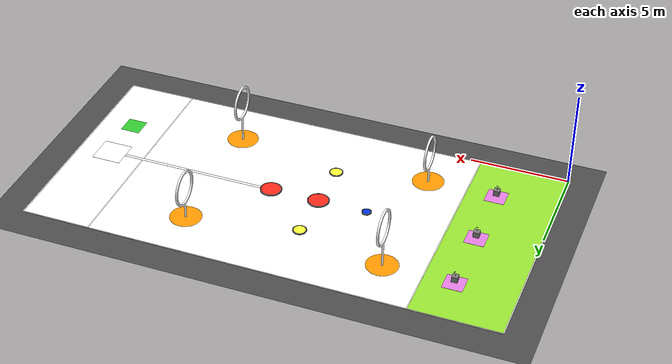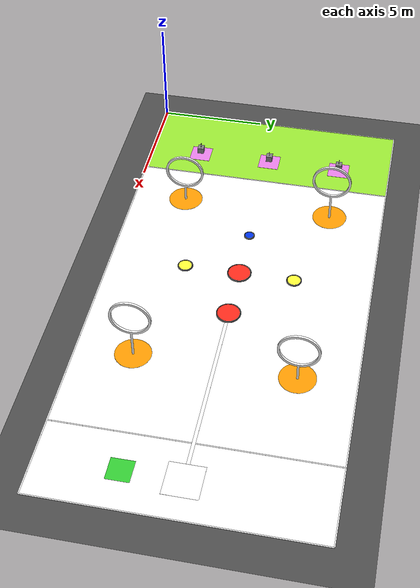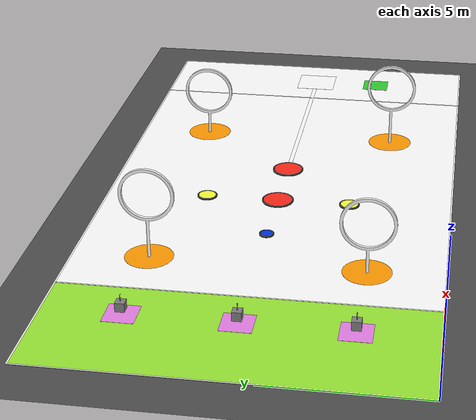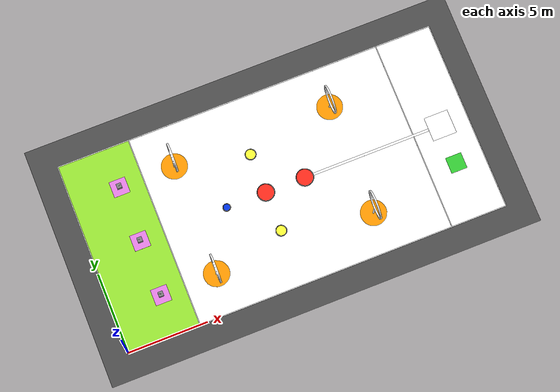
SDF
<?xml version="1.0"?>
<sdf version='1.9'>
  <world name="uav_contest_2026">

    <!-- ===================== 1. PHYSICS & GPS COORDINATE ===================== -->
    <physics name='default_physics' default='0' type='ode'>
      <max_step_size>0.001</max_step_size>
      <real_time_factor>1</real_time_factor>
      <real_time_update_rate>1000</real_time_update_rate>
    </physics>
    <gravity>0 0 -9.8</gravity>
    <magnetic_field>6e-06 2.3e-05 -4.2e-05</magnetic_field>
    <atmosphere type='adiabatic'/>
    <spherical_coordinates>
      <surface_model>EARTH_WGS84</surface_model>
      <world_frame_orientation>ENU</world_frame_orientation>
      <latitude_deg>10.851839568519779</latitude_deg>
      <longitude_deg>106.77210871747029</longitude_deg>
      <elevation>0</elevation>
    </spherical_coordinates>

    <!-- ===================== 2. ENVIRONMENT & LIGHT ===================== -->
    <scene>
      <grid>false</grid>
      <ambient>0.4 0.4 0.4 1</ambient>
      <background>0.7 0.7 0.7 1</background>
      <shadows>true</shadows>
    </scene>
    <!-- Sun light -->
    <light name="sunUTC" type="directional">
      <pose>0 0 500 0 0 0</pose>
      <cast_shadows>true</cast_shadows>
      <intensity>1</intensity>
      <direction>0.001 0.625 -0.78</direction>
      <diffuse>0.904 0.904 0.904 1</diffuse>
      <specular>0.271 0.271 0.271 1</specular>
      <attenuation>
        <range>2000</range>
        <linear>0</linear>
        <constant>1</constant>
        <quadratic>0</quadratic>
      </attenuation>
      <spot>
        <inner_angle>0</inner_angle>
        <outer_angle>0</outer_angle>
        <falloff>0</falloff>
      </spot>
    </light>

    <!-- ===================== 3. WORLD MODELS ===================== -->
    <!-- Main ground plane for physics (invisible, large area) -->
    <model name="ground_plane">
      <static>true</static>
      <link name="link">
        <collision name="collision">
          <geometry>
            <plane>
              <normal>0 0 1</normal>
              <size>100 100</size>
            </plane>
          </geometry>
          <surface>
            <friction>
              <ode>
                <mu>0.6</mu>
                <mu2>0.6</mu2>
              </ode>
            </friction>
            <bounce>
              <restitution_coefficient>0.8</restitution_coefficient>
              <threshold>0.05</threshold>
            </bounce>
            <contact>
              <ode>
                <min_depth>0.001</min_depth>
                <max_vel>10.0</max_vel>
                <kp>5e5</kp>
                <kd>200</kd>
              </ode>
            </contact>
          </surface>
        </collision>
        <visual name="visual">
          <geometry>
            <plane>
              <normal>0 0 1</normal>
              <size>100 100</size>
            </plane>
          </geometry>
          <material>
            <ambient>0.3 0.3 0.3 1</ambient>
            <diffuse>0.3 0.3 0.3 1</diffuse>
            <specular>0.1 0.1 0.1 1</specular>
          </material>
        </visual>
        <pose>0 0 0 0 0 0</pose>
      </link>
      <pose>0 0 0 0 0 0</pose>
    </model>
    <!-- Competition Area: Total 24m x 12m -->
    <!-- Origin at bottom-left corner of green zone -->
    <!-- GREEN ZONE (Vehicle Zone): 4.5m x 12m - Left side -->
    <model name="zone_green">
      <static>true</static>
      <link name="link">
        <visual name="visual">
          <geometry>
            <box>
              <size>4.5 12 0.01</size>
            </box>
          </geometry>
          <material>
            <ambient>0.6 0.9 0.2 1</ambient>
            <diffuse>0.6 0.9 0.2 1</diffuse>
            <specular>0.1 0.1 0.1 1</specular>
          </material>
        </visual>
      </link>
      <pose>2.25 6 0.005 0 0 0</pose>
    </model>
    <!-- GRAY ZONE (Competition Area): 19.5m x 12m - Right side -->
    <model name="zone_gray">
      <static>true</static>
      <link name="link">
        <visual name="visual">
          <geometry>
            <box>
              <size>19.5 12 0.01</size>
            </box>
          </geometry>
          <material>
            <ambient>1 1 1 1</ambient>
            <diffuse>1 1 1 1</diffuse>
            <specular>0.1 0.1 0.1 1</specular>
            <pbr>
              <metal>
                <albedo_map>model://uav_contest_2026/materials/textures/Ground.png</albedo_map>
                <metalness>0.0</metalness>
                <roughness>0.9</roughness>
              </metal>
            </pbr>
          </material>
        </visual>
      </link>
      <pose>14.25 6 0.006 0 0 0</pose>
    </model>
    <!-- HELIPAD in Safe Zone -->
    <model name="helipad">
      <static>true</static>
      <link name="link">
        <visual name="visual">
          <geometry>
            <box>
              <size>1.5 1.5 0.01</size>
            </box>
          </geometry>
          <material>
            <ambient>1 1 1 1</ambient>
            <diffuse>1 1 1 1</diffuse>
            <specular>0.1 0.1 0.1 1</specular>
            <pbr>
              <metal>
                <albedo_map>model://uav_contest_2026/materials/textures/Heliport.png</albedo_map>
                <metalness>0.0</metalness>
                <roughness>0.8</roughness>
              </metal>
            </pbr>
          </material>
        </visual>
      </link>
      <pose>22.25 6 0.008 0 0 1.5708</pose>
    </model>
    <!-- SZ Marker (Green square) -->
    <model name="sz_marker">
      <static>true</static>
      <link name="link">
        <visual name="visual">
          <geometry>
            <box>
              <size>1.0 1.0 0.01</size>
            </box>
          </geometry>
          <material>
            <ambient>0.2 0.8 0.2 1</ambient>
            <diffuse>0.2 0.8 0.2 1</diffuse>
            <specular>0.1 0.1 0.1 1</specular>
          </material>
        </visual>
      </link>
      <pose>22.25 3.5 0.008 0 0 0</pose>
    </model>
    <!-- FIRE POINTS (F1-F5) - Center area -->
    <!-- F1: Red (main, right) -->
    <!-- F1: 1000mm Red Target #FC2A1B, height 6cm -->
    <model name="f1">
      <static>true</static>
      <link name="link">
        <!-- Black perimeter mat (slightly larger) -->
        <visual name="perimeter">
          <geometry>
            <cylinder>
              <radius>0.55</radius>
              <length>0.06</length>
            </cylinder>
          </geometry>
          <material>
            <ambient>0.05 0.05 0.05 1</ambient>
            <diffuse>0.05 0.05 0.05 1</diffuse>
            <specular>0.1 0.1 0.1 1</specular>
          </material>
        </visual>
        <!-- Red impact area (1000mm diameter) -->
        <visual name="target">
          <pose>0 0 0.001 0 0 0</pose>
          <geometry>
            <cylinder>
              <radius>0.5</radius>
              <length>0.06</length>
            </cylinder>
          </geometry>
          <material>
            <!-- #FC2A1B = RGB(252, 42, 27) = (0.988, 0.165, 0.106) -->
            <ambient>0.988 0.165 0.106 1</ambient>
            <diffuse>0.988 0.165 0.106 1</diffuse>
            <specular>0.2 0.2 0.2 1</specular>
          </material>
        </visual>
        <!-- Collision for ball detection -->
        <collision name="target_collision">
          <pose>0 0 0.001 0 0 0</pose>
          <geometry>
            <cylinder>
              <radius>0.5</radius>
              <length>0.06</length>
            </cylinder>
          </geometry>
        </collision>
        <!-- Contact sensor to detect ball hits -->
        <sensor name="sensor_contact" type="contact">
          <always_on>true</always_on>
          <update_rate>1000</update_rate>
          <contact>
            <collision>target_collision</collision>
          </contact>
        </sensor>
      </link>
      <pose>13.5 6 0.03 0 0 0</pose>
    </model>
    <!-- F2: Red (main, left) -->
    <!-- F2: 1000mm Red Target #FC2A1B, height 6cm -->
    <model name="f2">
      <static>true</static>
      <link name="link">
        <!-- Black perimeter mat (slightly larger) -->
        <visual name="perimeter">
          <geometry>
            <cylinder>
              <radius>0.55</radius>
              <length>0.06</length>
            </cylinder>
          </geometry>
          <material>
            <ambient>0.05 0.05 0.05 1</ambient>
            <diffuse>0.05 0.05 0.05 1</diffuse>
            <specular>0.1 0.1 0.1 1</specular>
          </material>
        </visual>
        <!-- Red impact area (1000mm diameter) -->
        <visual name="target">
          <pose>0 0 0.001 0 0 0</pose>
          <geometry>
            <cylinder>
              <radius>0.5</radius>
              <length>0.06</length>
            </cylinder>
          </geometry>
          <material>
            <!-- #FC2A1B = RGB(252, 42, 27) = (0.988, 0.165, 0.106) -->
            <ambient>0.988 0.165 0.106 1</ambient>
            <diffuse>0.988 0.165 0.106 1</diffuse>
            <specular>0.2 0.2 0.2 1</specular>
          </material>
        </visual>
        <!-- Collision for ball detection -->
        <collision name="target_collision">
          <pose>0 0 0.001 0 0 0</pose>
          <geometry>
            <cylinder>
              <radius>0.5</radius>
              <length>0.06</length>
            </cylinder>
          </geometry>
        </collision>
        <!-- Contact sensor to detect ball hits -->
        <sensor name="sensor_contact" type="contact">
          <contact>
            <collision>target_collision</collision>
          </contact>
        </sensor>
      </link>
      <pose>11 6 0.03 0 0 0</pose>
    </model>
    <!-- F3: 600mm Yellow Target #FAFF37, height 6cm -->
    <model name="f3">
      <static>true</static>
      <link name="link">
        <!-- Black perimeter mat -->
        <visual name="perimeter">
          <geometry>
            <cylinder>
              <radius>0.35</radius>
              <length>0.06</length>
            </cylinder>
          </geometry>
          <material>
            <ambient>0.05 0.05 0.05 1</ambient>
            <diffuse>0.05 0.05 0.05 1</diffuse>
            <specular>0.1 0.1 0.1 1</specular>
          </material>
        </visual>
        <!-- Yellow impact area (600mm diameter) -->
        <visual name="target">
          <pose>0 0 0.001 0 0 0</pose>
          <geometry>
            <cylinder>
              <radius>0.3</radius>
              <length>0.06</length>
            </cylinder>
          </geometry>
          <material>
            <!-- #FAFF37 = RGB(250, 255, 55) = (0.980, 1.0, 0.216) -->
            <ambient>0.980 1.0 0.216 1</ambient>
            <diffuse>0.980 1.0 0.216 1</diffuse>
            <specular>0.2 0.2 0.2 1</specular>
          </material>
        </visual>
        <!-- Collision for ball detection -->
        <collision name="target_collision">
          <pose>0 0 0.001 0 0 0</pose>
          <geometry>
            <cylinder>
              <radius>0.3</radius>
              <length>0.06</length>
            </cylinder>
          </geometry>
        </collision>
        <!-- Contact sensor to detect ball hits -->
        <sensor name="sensor_contact" type="contact">
          <contact>
            <collision>target_collision</collision>
          </contact>
        </sensor>
      </link>
      <pose>11 3.5 0.03 0 0 0</pose>
    </model>
    <!-- F4: 600mm Yellow Target #FAFF37, height 6cm -->
    <model name="f4">
      <static>true</static>
      <link name="link">
        <!-- Black perimeter mat -->
        <visual name="perimeter">
          <geometry>
            <cylinder>
              <radius>0.35</radius>
              <length>0.06</length>
            </cylinder>
          </geometry>
          <material>
            <ambient>0.05 0.05 0.05 1</ambient>
            <diffuse>0.05 0.05 0.05 1</diffuse>
            <specular>0.1 0.1 0.1 1</specular>
          </material>
        </visual>
        <!-- Yellow impact area (600mm diameter) -->
        <visual name="target">
          <pose>0 0 0.001 0 0 0</pose>
          <geometry>
            <cylinder>
              <radius>0.3</radius>
              <length>0.06</length>
            </cylinder>
          </geometry>
          <material>
            <!-- #FAFF37 = RGB(250, 255, 55) = (0.980, 1.0, 0.216) -->
            <ambient>0.980 1.0 0.216 1</ambient>
            <diffuse>0.980 1.0 0.216 1</diffuse>
            <specular>0.2 0.2 0.2 1</specular>
          </material>
        </visual>
        <!-- Collision for ball detection -->
        <collision name="target_collision">
          <pose>0 0 0.001 0 0 0</pose>
          <geometry>
            <cylinder>
              <radius>0.3</radius>
              <length>0.06</length>
            </cylinder>
          </geometry>
        </collision>
        <!-- Contact sensor to detect ball hits -->
        <sensor name="sensor_contact" type="contact">
          <contact>
            <collision>target_collision</collision>
          </contact>
        </sensor>
      </link>
      <pose>11 8.5 0.03 0 0 0</pose>
    </model>
    <!-- F5: 400mm Blue Target #3C00FB, height 6cm -->
    <model name="f5">
      <static>true</static>
      <link name="link">
        <!-- Black perimeter mat -->
        <visual name="perimeter">
          <geometry>
            <cylinder>
              <radius>0.25</radius>
              <length>0.06</length>
            </cylinder>
          </geometry>
          <material>
            <ambient>0.05 0.05 0.05 1</ambient>
            <diffuse>0.05 0.05 0.05 1</diffuse>
            <specular>0.1 0.1 0.1 1</specular>
          </material>
        </visual>
        <!-- Blue impact area (400mm diameter) -->
        <visual name="target">
          <pose>0 0 0.001 0 0 0</pose>
          <geometry>
            <cylinder>
              <radius>0.2</radius>
              <length>0.06</length>
            </cylinder>
          </geometry>
          <material>
            <!-- Pure blue - adjusted to look more blue, less purple -->
            <ambient>0.0 0.2 0.9 1</ambient>
            <diffuse>0.0 0.2 0.9 1</diffuse>
            <specular>0.2 0.2 0.2 1</specular>
          </material>
        </visual>
        <!-- Collision for ball detection -->
        <collision name="target_collision">
          <pose>0 0 0.001 0 0 0</pose>
          <geometry>
            <cylinder>
              <radius>0.2</radius>
              <length>0.06</length>
            </cylinder>
          </geometry>
        </collision>
        <!-- Contact sensor to detect ball hits -->
        <sensor name="sensor_contact" type="contact">
          <contact>
            <collision>target_collision</collision>
          </contact>
        </sensor>
      </link>
      <pose>8.5 6 0.03 0 0 0</pose>
    </model>
    <!-- TARGET ZONES (TZ1-TZ4) - Orange circles -->
    <!-- TZ1: Top right -->
    <!-- TZ1: Target Zone with 1.7m obstacle mesh -->
    <model name="tz1">
      <static>true</static>
      <link name="link">
        <!-- Base marker on ground -->
        <visual name="base_marker">
          <geometry>
            <cylinder>
              <radius>0.8</radius>
              <length>0.01</length>
            </cylinder>
          </geometry>
          <material>
            <ambient>1.0 0.6 0.0 1</ambient>
            <diffuse>1.0 0.6 0.0 1</diffuse>
            <specular>0.2 0.2 0.2 1</specular>
          </material>
        </visual>
        <!-- 3D Obstacle mesh with texture -->
        <visual name="obstacle">
          <pose>0 0 0 0 0 1.5708</pose>
          <geometry>
            <mesh>
              <uri>model://uav_contest_2026/meshes/obstacle-1m7.dae</uri>
            </mesh>
          </geometry>
          <material>
            <ambient>1 1 1 1</ambient>
            <diffuse>1 1 1 1</diffuse>
            <specular>0.3 0.3 0.3 1</specular>
            <pbr>
              <metal>
                <albedo_map>model://uav_contest_2026/materials/textures/racing.png</albedo_map>
                <metalness>0.0</metalness>
                <roughness>0.7</roughness>
              </metal>
            </pbr>
          </material>
        </visual>
        <!-- Collision meshes (convex decomposition) -->
        <collision name="collision_0"><pose>0 0 0 0 0 1.5708</pose><geometry><mesh><uri>model://uav_contest_2026/meshes/collisions/obstacle-1m7_collision_0.stl</uri></mesh></geometry></collision>
        <collision name="collision_1"><pose>0 0 0 0 0 1.5708</pose><geometry><mesh><uri>model://uav_contest_2026/meshes/collisions/obstacle-1m7_collision_1.stl</uri></mesh></geometry></collision>
        <collision name="collision_2"><pose>0 0 0 0 0 1.5708</pose><geometry><mesh><uri>model://uav_contest_2026/meshes/collisions/obstacle-1m7_collision_2.stl</uri></mesh></geometry></collision>
        <collision name="collision_3"><pose>0 0 0 0 0 1.5708</pose><geometry><mesh><uri>model://uav_contest_2026/meshes/collisions/obstacle-1m7_collision_3.stl</uri></mesh></geometry></collision>
        <collision name="collision_4"><pose>0 0 0 0 0 1.5708</pose><geometry><mesh><uri>model://uav_contest_2026/meshes/collisions/obstacle-1m7_collision_4.stl</uri></mesh></geometry></collision>
        <collision name="collision_5"><pose>0 0 0 0 0 1.5708</pose><geometry><mesh><uri>model://uav_contest_2026/meshes/collisions/obstacle-1m7_collision_5.stl</uri></mesh></geometry></collision>
        <collision name="collision_6"><pose>0 0 0 0 0 1.5708</pose><geometry><mesh><uri>model://uav_contest_2026/meshes/collisions/obstacle-1m7_collision_6.stl</uri></mesh></geometry></collision>
        <collision name="collision_7"><pose>0 0 0 0 0 1.5708</pose><geometry><mesh><uri>model://uav_contest_2026/meshes/collisions/obstacle-1m7_collision_7.stl</uri></mesh></geometry></collision>
        <collision name="collision_8"><pose>0 0 0 0 0 1.5708</pose><geometry><mesh><uri>model://uav_contest_2026/meshes/collisions/obstacle-1m7_collision_8.stl</uri></mesh></geometry></collision>
        <collision name="collision_9"><pose>0 0 0 0 0 1.5708</pose><geometry><mesh><uri>model://uav_contest_2026/meshes/collisions/obstacle-1m7_collision_9.stl</uri></mesh></geometry></collision>
        <collision name="collision_10"><pose>0 0 0 0 0 1.5708</pose><geometry><mesh><uri>model://uav_contest_2026/meshes/collisions/obstacle-1m7_collision_10.stl</uri></mesh></geometry></collision>
        <collision name="collision_11"><pose>0 0 0 0 0 1.5708</pose><geometry><mesh><uri>model://uav_contest_2026/meshes/collisions/obstacle-1m7_collision_11.stl</uri></mesh></geometry></collision>
        <collision name="collision_12"><pose>0 0 0 0 0 1.5708</pose><geometry><mesh><uri>model://uav_contest_2026/meshes/collisions/obstacle-1m7_collision_12.stl</uri></mesh></geometry></collision>
        <collision name="collision_13"><pose>0 0 0 0 0 1.5708</pose><geometry><mesh><uri>model://uav_contest_2026/meshes/collisions/obstacle-1m7_collision_13.stl</uri></mesh></geometry></collision>
      </link>
      <pose>16.5 9.5 0.008 0 0 0</pose>
    </model>
    <!-- TZ2: Target Zone with 2.2m obstacle mesh (center at 2.2m height) -->
    <model name="tz2">
      <static>true</static>
      <link name="link">
        <!-- Base marker on ground -->
        <visual name="base_marker">
          <geometry>
            <cylinder>
              <radius>0.8</radius>
              <length>0.01</length>
            </cylinder>
          </geometry>
          <material>
            <ambient>1.0 0.6 0.0 1</ambient>
            <diffuse>1.0 0.6 0.0 1</diffuse>
            <specular>0.2 0.2 0.2 1</specular>
          </material>
        </visual>
        <!-- 3D Obstacle mesh -->
        <visual name="obstacle">
          <pose>0 0 0 0 0 1.5708</pose>
          <geometry>
            <mesh>
              <uri>model://uav_contest_2026/meshes/obstacle-2m2.dae</uri>
            </mesh>
          </geometry>
          <material>
            <ambient>1 1 1 1</ambient>
            <diffuse>1 1 1 1</diffuse>
            <specular>0.3 0.3 0.3 1</specular>
            <pbr>
              <metal>
                <albedo_map>model://uav_contest_2026/materials/textures/racing1.png</albedo_map>
                <metalness>0.0</metalness>
                <roughness>0.7</roughness>
              </metal>
            </pbr>
          </material>
        </visual>
        <!-- Collision meshes (convex decomposition) -->
        <collision name="collision_0"><pose>0 0 0 0 0 1.5708</pose><geometry><mesh><uri>model://uav_contest_2026/meshes/collisions/obstacle-2m2_collision_0.stl</uri></mesh></geometry></collision>
        <collision name="collision_1"><pose>0 0 0 0 0 1.5708</pose><geometry><mesh><uri>model://uav_contest_2026/meshes/collisions/obstacle-2m2_collision_1.stl</uri></mesh></geometry></collision>
        <collision name="collision_2"><pose>0 0 0 0 0 1.5708</pose><geometry><mesh><uri>model://uav_contest_2026/meshes/collisions/obstacle-2m2_collision_2.stl</uri></mesh></geometry></collision>
        <collision name="collision_3"><pose>0 0 0 0 0 1.5708</pose><geometry><mesh><uri>model://uav_contest_2026/meshes/collisions/obstacle-2m2_collision_3.stl</uri></mesh></geometry></collision>
        <collision name="collision_4"><pose>0 0 0 0 0 1.5708</pose><geometry><mesh><uri>model://uav_contest_2026/meshes/collisions/obstacle-2m2_collision_4.stl</uri></mesh></geometry></collision>
        <collision name="collision_5"><pose>0 0 0 0 0 1.5708</pose><geometry><mesh><uri>model://uav_contest_2026/meshes/collisions/obstacle-2m2_collision_5.stl</uri></mesh></geometry></collision>
        <collision name="collision_6"><pose>0 0 0 0 0 1.5708</pose><geometry><mesh><uri>model://uav_contest_2026/meshes/collisions/obstacle-2m2_collision_6.stl</uri></mesh></geometry></collision>
        <collision name="collision_7"><pose>0 0 0 0 0 1.5708</pose><geometry><mesh><uri>model://uav_contest_2026/meshes/collisions/obstacle-2m2_collision_7.stl</uri></mesh></geometry></collision>
        <collision name="collision_8"><pose>0 0 0 0 0 1.5708</pose><geometry><mesh><uri>model://uav_contest_2026/meshes/collisions/obstacle-2m2_collision_8.stl</uri></mesh></geometry></collision>
        <collision name="collision_9"><pose>0 0 0 0 0 1.5708</pose><geometry><mesh><uri>model://uav_contest_2026/meshes/collisions/obstacle-2m2_collision_9.stl</uri></mesh></geometry></collision>
        <collision name="collision_10"><pose>0 0 0 0 0 1.5708</pose><geometry><mesh><uri>model://uav_contest_2026/meshes/collisions/obstacle-2m2_collision_10.stl</uri></mesh></geometry></collision>
        <collision name="collision_11"><pose>0 0 0 0 0 1.5708</pose><geometry><mesh><uri>model://uav_contest_2026/meshes/collisions/obstacle-2m2_collision_11.stl</uri></mesh></geometry></collision>
        <collision name="collision_12"><pose>0 0 0 0 0 1.5708</pose><geometry><mesh><uri>model://uav_contest_2026/meshes/collisions/obstacle-2m2_collision_12.stl</uri></mesh></geometry></collision>
      </link>
      <pose>6.5 9.5 0.008 0 0 0</pose>
    </model>
    <!-- TZ3: Target Zone with 1.7m obstacle mesh (center at 1.6m height) -->
    <model name="tz3">
      <static>true</static>
      <link name="link">
        <!-- Base marker on ground -->
        <visual name="base_marker">
          <geometry>
            <cylinder>
              <radius>0.8</radius>
              <length>0.01</length>
            </cylinder>
          </geometry>
          <material>
            <ambient>1.0 0.6 0.0 1</ambient>
            <diffuse>1.0 0.6 0.0 1</diffuse>
            <specular>0.2 0.2 0.2 1</specular>
          </material>
        </visual>
        <!-- 3D Obstacle mesh -->
        <visual name="obstacle">
          <pose>0 0 0 0 0 1.5708</pose>
          <geometry>
            <mesh>
              <uri>model://uav_contest_2026/meshes/obstacle-1m7.dae</uri>
            </mesh>
          </geometry>
          <material>
            <ambient>1 1 1 1</ambient>
            <diffuse>1 1 1 1</diffuse>
            <specular>0.3 0.3 0.3 1</specular>
            <pbr>
              <metal>
                <albedo_map>model://uav_contest_2026/materials/textures/racing.png</albedo_map>
                <metalness>0.0</metalness>
                <roughness>0.7</roughness>
              </metal>
            </pbr>
          </material>
        </visual>
        <!-- Collision meshes (convex decomposition) -->
        <collision name="collision_0"><pose>0 0 0 0 0 1.5708</pose><geometry><mesh><uri>model://uav_contest_2026/meshes/collisions/obstacle-1m7_collision_0.stl</uri></mesh></geometry></collision>
        <collision name="collision_1"><pose>0 0 0 0 0 1.5708</pose><geometry><mesh><uri>model://uav_contest_2026/meshes/collisions/obstacle-1m7_collision_1.stl</uri></mesh></geometry></collision>
        <collision name="collision_2"><pose>0 0 0 0 0 1.5708</pose><geometry><mesh><uri>model://uav_contest_2026/meshes/collisions/obstacle-1m7_collision_2.stl</uri></mesh></geometry></collision>
        <collision name="collision_3"><pose>0 0 0 0 0 1.5708</pose><geometry><mesh><uri>model://uav_contest_2026/meshes/collisions/obstacle-1m7_collision_3.stl</uri></mesh></geometry></collision>
        <collision name="collision_4"><pose>0 0 0 0 0 1.5708</pose><geometry><mesh><uri>model://uav_contest_2026/meshes/collisions/obstacle-1m7_collision_4.stl</uri></mesh></geometry></collision>
        <collision name="collision_5"><pose>0 0 0 0 0 1.5708</pose><geometry><mesh><uri>model://uav_contest_2026/meshes/collisions/obstacle-1m7_collision_5.stl</uri></mesh></geometry></collision>
        <collision name="collision_6"><pose>0 0 0 0 0 1.5708</pose><geometry><mesh><uri>model://uav_contest_2026/meshes/collisions/obstacle-1m7_collision_6.stl</uri></mesh></geometry></collision>
        <collision name="collision_7"><pose>0 0 0 0 0 1.5708</pose><geometry><mesh><uri>model://uav_contest_2026/meshes/collisions/obstacle-1m7_collision_7.stl</uri></mesh></geometry></collision>
        <collision name="collision_8"><pose>0 0 0 0 0 1.5708</pose><geometry><mesh><uri>model://uav_contest_2026/meshes/collisions/obstacle-1m7_collision_8.stl</uri></mesh></geometry></collision>
        <collision name="collision_9"><pose>0 0 0 0 0 1.5708</pose><geometry><mesh><uri>model://uav_contest_2026/meshes/collisions/obstacle-1m7_collision_9.stl</uri></mesh></geometry></collision>
        <collision name="collision_10"><pose>0 0 0 0 0 1.5708</pose><geometry><mesh><uri>model://uav_contest_2026/meshes/collisions/obstacle-1m7_collision_10.stl</uri></mesh></geometry></collision>
        <collision name="collision_11"><pose>0 0 0 0 0 1.5708</pose><geometry><mesh><uri>model://uav_contest_2026/meshes/collisions/obstacle-1m7_collision_11.stl</uri></mesh></geometry></collision>
        <collision name="collision_12"><pose>0 0 0 0 0 1.5708</pose><geometry><mesh><uri>model://uav_contest_2026/meshes/collisions/obstacle-1m7_collision_12.stl</uri></mesh></geometry></collision>
        <collision name="collision_13"><pose>0 0 0 0 0 1.5708</pose><geometry><mesh><uri>model://uav_contest_2026/meshes/collisions/obstacle-1m7_collision_13.stl</uri></mesh></geometry></collision>
      </link>
      <pose>6.5 2.5 0.008 0 0 0</pose>
    </model>
    <!-- TZ4: Target Zone with 2.2m obstacle mesh (center at 2.2m height) -->
    <model name="tz4">
      <static>true</static>
      <link name="link">
        <!-- Base marker on ground -->
        <visual name="base_marker">
          <geometry>
            <cylinder>
              <radius>0.8</radius>
              <length>0.01</length>
            </cylinder>
          </geometry>
          <material>
            <ambient>1.0 0.6 0.0 1</ambient>
            <diffuse>1.0 0.6 0.0 1</diffuse>
            <specular>0.2 0.2 0.2 1</specular>
          </material>
        </visual>
        <!-- 3D Obstacle mesh -->
        <visual name="obstacle">
          <pose>0 0 0 0 0 1.5708</pose>
          <geometry>
            <mesh>
              <uri>model://uav_contest_2026/meshes/obstacle-2m2.dae</uri>
            </mesh>
          </geometry>
          <material>
            <ambient>1 1 1 1</ambient>
            <diffuse>1 1 1 1</diffuse>
            <specular>0.3 0.3 0.3 1</specular>
            <pbr>
              <metal>
                <albedo_map>model://uav_contest_2026/materials/textures/racing1.png</albedo_map>
                <metalness>0.0</metalness>
                <roughness>0.7</roughness>
              </metal>
            </pbr>
          </material>
        </visual>
        <!-- Collision meshes (convex decomposition) -->
        <collision name="collision_0"><pose>0 0 0 0 0 1.5708</pose><geometry><mesh><uri>model://uav_contest_2026/meshes/collisions/obstacle-2m2_collision_0.stl</uri></mesh></geometry></collision>
        <collision name="collision_1"><pose>0 0 0 0 0 1.5708</pose><geometry><mesh><uri>model://uav_contest_2026/meshes/collisions/obstacle-2m2_collision_1.stl</uri></mesh></geometry></collision>
        <collision name="collision_2"><pose>0 0 0 0 0 1.5708</pose><geometry><mesh><uri>model://uav_contest_2026/meshes/collisions/obstacle-2m2_collision_2.stl</uri></mesh></geometry></collision>
        <collision name="collision_3"><pose>0 0 0 0 0 1.5708</pose><geometry><mesh><uri>model://uav_contest_2026/meshes/collisions/obstacle-2m2_collision_3.stl</uri></mesh></geometry></collision>
        <collision name="collision_4"><pose>0 0 0 0 0 1.5708</pose><geometry><mesh><uri>model://uav_contest_2026/meshes/collisions/obstacle-2m2_collision_4.stl</uri></mesh></geometry></collision>
        <collision name="collision_5"><pose>0 0 0 0 0 1.5708</pose><geometry><mesh><uri>model://uav_contest_2026/meshes/collisions/obstacle-2m2_collision_5.stl</uri></mesh></geometry></collision>
        <collision name="collision_6"><pose>0 0 0 0 0 1.5708</pose><geometry><mesh><uri>model://uav_contest_2026/meshes/collisions/obstacle-2m2_collision_6.stl</uri></mesh></geometry></collision>
        <collision name="collision_7"><pose>0 0 0 0 0 1.5708</pose><geometry><mesh><uri>model://uav_contest_2026/meshes/collisions/obstacle-2m2_collision_7.stl</uri></mesh></geometry></collision>
        <collision name="collision_8"><pose>0 0 0 0 0 1.5708</pose><geometry><mesh><uri>model://uav_contest_2026/meshes/collisions/obstacle-2m2_collision_8.stl</uri></mesh></geometry></collision>
        <collision name="collision_9"><pose>0 0 0 0 0 1.5708</pose><geometry><mesh><uri>model://uav_contest_2026/meshes/collisions/obstacle-2m2_collision_9.stl</uri></mesh></geometry></collision>
        <collision name="collision_10"><pose>0 0 0 0 0 1.5708</pose><geometry><mesh><uri>model://uav_contest_2026/meshes/collisions/obstacle-2m2_collision_10.stl</uri></mesh></geometry></collision>
        <collision name="collision_11"><pose>0 0 0 0 0 1.5708</pose><geometry><mesh><uri>model://uav_contest_2026/meshes/collisions/obstacle-2m2_collision_11.stl</uri></mesh></geometry></collision>
        <collision name="collision_12"><pose>0 0 0 0 0 1.5708</pose><geometry><mesh><uri>model://uav_contest_2026/meshes/collisions/obstacle-2m2_collision_12.stl</uri></mesh></geometry></collision>
      </link>
      <pose>16.5 2.5 0.008 0 0 0</pose>
    </model>
    <!-- VEHICLE MARKERS (V1-V3) - Pink squares in green zone -->
    <!-- V1: Bottom -->
    <model name="v1">
      <static>true</static>
      <link name="link">
        <visual name="visual">
          <geometry>
            <box>
              <size>1.0 1.0 0.01</size>
            </box>
          </geometry>
          <material>
            <ambient>0.9 0.5 0.9 1</ambient>
            <diffuse>0.9 0.5 0.9 1</diffuse>
            <specular>0.2 0.2 0.2 1</specular>
          </material>
        </visual>
      </link>
      <pose>3 2.5 0.008 0 0 0</pose>
    </model>
    <!-- V2: Middle -->
    <model name="v2">
      <static>true</static>
      <link name="link">
        <visual name="visual">
          <geometry>
            <box>
              <size>1.0 1.0 0.01</size>
            </box>
          </geometry>
          <material>
            <ambient>0.9 0.5 0.9 1</ambient>
            <diffuse>0.9 0.5 0.9 1</diffuse>
            <specular>0.2 0.2 0.2 1</specular>
          </material>
        </visual>
      </link>
      <pose>3 6 0.008 0 0 0</pose>
    </model>
    <!-- V3: Top -->
    <model name="v3">
      <static>true</static>
      <link name="link">
        <visual name="visual">
          <geometry>
            <box>
              <size>1.0 1.0 0.01</size>
            </box>
          </geometry>
          <material>
            <ambient>0.9 0.5 0.9 1</ambient>
            <diffuse>0.9 0.5 0.9 1</diffuse>
            <specular>0.2 0.2 0.2 1</specular>
          </material>
        </visual>
      </link>
      <pose>3 9.5 0.008 0 0 0</pose>
    </model>
    <!-- RESCUED MODELS - Can be picked up by drone -->
    <!-- 0.3-meter cube, 100 grams, with circle hook on top -->
    <!-- Inertia for 0.1kg cube with side 0.3m: I = (1/6)*m*a^2 = (1/6)*0.1*0.09 = 0.0015 -->
    <!-- Rescued 1 at V1 position -->
    <model name="rescued_1">
      <pose>3 2.5 0.15 0 0 0</pose>
      <link name="link">
        <inertial>
          <mass>0.1</mass>
          <inertia>
            <ixx>0.0015</ixx>
            <iyy>0.0015</iyy>
            <izz>0.0015</izz>
          </inertia>
        </inertial>
        <collision name="collision_0">
          <geometry><mesh><uri>model://uav_contest_2026/meshes/collisions/rescued_collision_0.stl</uri></mesh></geometry>
        </collision>
        <collision name="collision_1">
          <geometry><mesh><uri>model://uav_contest_2026/meshes/collisions/rescued_collision_1.stl</uri></mesh></geometry>
        </collision>
        <collision name="collision_2">
          <geometry><mesh><uri>model://uav_contest_2026/meshes/collisions/rescued_collision_2.stl</uri></mesh></geometry>
        </collision>
        <collision name="collision_3">
          <geometry><mesh><uri>model://uav_contest_2026/meshes/collisions/rescued_collision_3.stl</uri></mesh></geometry>
        </collision>
        <collision name="collision_4">
          <geometry><mesh><uri>model://uav_contest_2026/meshes/collisions/rescued_collision_4.stl</uri></mesh></geometry>
        </collision>
        <collision name="collision_5">
          <geometry><mesh><uri>model://uav_contest_2026/meshes/collisions/rescued_collision_5.stl</uri></mesh></geometry>
        </collision>
        <collision name="collision_6">
          <geometry><mesh><uri>model://uav_contest_2026/meshes/collisions/rescued_collision_6.stl</uri></mesh></geometry>
        </collision>
        <collision name="collision_7">
          <geometry><mesh><uri>model://uav_contest_2026/meshes/collisions/rescued_collision_7.stl</uri></mesh></geometry>
        </collision>
        <collision name="collision_8">
          <geometry><mesh><uri>model://uav_contest_2026/meshes/collisions/rescued_collision_8.stl</uri></mesh></geometry>
        </collision>
        <collision name="collision_9">
          <geometry><mesh><uri>model://uav_contest_2026/meshes/collisions/rescued_collision_9.stl</uri></mesh></geometry>
        </collision>
        <collision name="collision_10">
          <geometry><mesh><uri>model://uav_contest_2026/meshes/collisions/rescued_collision_10.stl</uri></mesh></geometry>
        </collision>
        <visual name="visual">
          <geometry>
            <mesh>
              <uri>model://uav_contest_2026/meshes/rescued.dae</uri>
            </mesh>
          </geometry>
          <material>
            <ambient>0.5 0.5 0.5 1</ambient>
            <diffuse>0.5 0.5 0.5 1</diffuse>
            <specular>0.3 0.3 0.3 1</specular>
          </material>
        </visual>
      </link>
    </model>
    <!-- Rescued 2 at V2 position -->
    <model name="rescued_2">
      <pose>3 6 0.15 0 0 0</pose>
      <link name="link">
        <inertial>
          <mass>0.1</mass>
          <inertia>
            <ixx>0.0015</ixx>
            <iyy>0.0015</iyy>
            <izz>0.0015</izz>
          </inertia>
        </inertial>
        <collision name="collision_0">
          <geometry><mesh><uri>model://uav_contest_2026/meshes/collisions/rescued_collision_0.stl</uri></mesh></geometry>
        </collision>
        <collision name="collision_1">
          <geometry><mesh><uri>model://uav_contest_2026/meshes/collisions/rescued_collision_1.stl</uri></mesh></geometry>
        </collision>
        <collision name="collision_2">
          <geometry><mesh><uri>model://uav_contest_2026/meshes/collisions/rescued_collision_2.stl</uri></mesh></geometry>
        </collision>
        <collision name="collision_3">
          <geometry><mesh><uri>model://uav_contest_2026/meshes/collisions/rescued_collision_3.stl</uri></mesh></geometry>
        </collision>
        <collision name="collision_4">
          <geometry><mesh><uri>model://uav_contest_2026/meshes/collisions/rescued_collision_4.stl</uri></mesh></geometry>
        </collision>
        <collision name="collision_5">
          <geometry><mesh><uri>model://uav_contest_2026/meshes/collisions/rescued_collision_5.stl</uri></mesh></geometry>
        </collision>
        <collision name="collision_6">
          <geometry><mesh><uri>model://uav_contest_2026/meshes/collisions/rescued_collision_6.stl</uri></mesh></geometry>
        </collision>
        <collision name="collision_7">
          <geometry><mesh><uri>model://uav_contest_2026/meshes/collisions/rescued_collision_7.stl</uri></mesh></geometry>
        </collision>
        <collision name="collision_8">
          <geometry><mesh><uri>model://uav_contest_2026/meshes/collisions/rescued_collision_8.stl</uri></mesh></geometry>
        </collision>
        <collision name="collision_9">
          <geometry><mesh><uri>model://uav_contest_2026/meshes/collisions/rescued_collision_9.stl</uri></mesh></geometry>
        </collision>
        <collision name="collision_10">
          <geometry><mesh><uri>model://uav_contest_2026/meshes/collisions/rescued_collision_10.stl</uri></mesh></geometry>
        </collision>
        <visual name="visual">
          <geometry>
            <mesh>
              <uri>model://uav_contest_2026/meshes/rescued.dae</uri>
            </mesh>
          </geometry>
          <material>
            <ambient>0.5 0.5 0.5 1</ambient>
            <diffuse>0.5 0.5 0.5 1</diffuse>
            <specular>0.3 0.3 0.3 1</specular>
          </material>
        </visual>
      </link>
    </model>
    <!-- Rescued 3 at V3 position -->
    <model name="rescued_3">
      <pose>3 9.5 0.15 0 0 0</pose>
      <link name="link">
        <inertial>
          <mass>0.1</mass>
          <inertia>
            <ixx>0.0015</ixx>
            <iyy>0.0015</iyy>
            <izz>0.0015</izz>
          </inertia>
        </inertial>
        <collision name="collision_0">
          <geometry><mesh><uri>model://uav_contest_2026/meshes/collisions/rescued_collision_0.stl</uri></mesh></geometry>
        </collision>
        <collision name="collision_1">
          <geometry><mesh><uri>model://uav_contest_2026/meshes/collisions/rescued_collision_1.stl</uri></mesh></geometry>
        </collision>
        <collision name="collision_2">
          <geometry><mesh><uri>model://uav_contest_2026/meshes/collisions/rescued_collision_2.stl</uri></mesh></geometry>
        </collision>
        <collision name="collision_3">
          <geometry><mesh><uri>model://uav_contest_2026/meshes/collisions/rescued_collision_3.stl</uri></mesh></geometry>
        </collision>
        <collision name="collision_4">
          <geometry><mesh><uri>model://uav_contest_2026/meshes/collisions/rescued_collision_4.stl</uri></mesh></geometry>
        </collision>
        <collision name="collision_5">
          <geometry><mesh><uri>model://uav_contest_2026/meshes/collisions/rescued_collision_5.stl</uri></mesh></geometry>
        </collision>
        <collision name="collision_6">
          <geometry><mesh><uri>model://uav_contest_2026/meshes/collisions/rescued_collision_6.stl</uri></mesh></geometry>
        </collision>
        <collision name="collision_7">
          <geometry><mesh><uri>model://uav_contest_2026/meshes/collisions/rescued_collision_7.stl</uri></mesh></geometry>
        </collision>
        <collision name="collision_8">
          <geometry><mesh><uri>model://uav_contest_2026/meshes/collisions/rescued_collision_8.stl</uri></mesh></geometry>
        </collision>
        <collision name="collision_9">
          <geometry><mesh><uri>model://uav_contest_2026/meshes/collisions/rescued_collision_9.stl</uri></mesh></geometry>
        </collision>
        <collision name="collision_10">
          <geometry><mesh><uri>model://uav_contest_2026/meshes/collisions/rescued_collision_10.stl</uri></mesh></geometry>
        </collision>
        <visual name="visual">
          <geometry>
            <mesh>
              <uri>model://uav_contest_2026/meshes/rescued.dae</uri>
            </mesh>
          </geometry>
          <material>
            <ambient>0.5 0.5 0.5 1</ambient>
            <diffuse>0.5 0.5 0.5 1</diffuse>
            <specular>0.3 0.3 0.3 1</specular>
          </material>
        </visual>
      </link>
    </model>
    <!-- Competition area border lines -->
    <model name="border_line">
      <static>true</static>
      <link name="link">
        <!-- Top border -->
        <visual name="top">
          <pose>12 12 0.007 0 0 0</pose>
          <geometry>
            <box>
              <size>24 0.05 0.01</size>
            </box>
          </geometry>
          <material>
            <ambient>1 1 1 1</ambient>
            <diffuse>1 1 1 1</diffuse>
            <specular>0.3 0.3 0.3 1</specular>
          </material>
        </visual>
        <!-- Bottom border -->
        <visual name="bottom">
          <pose>12 0 0.007 0 0 0</pose>
          <geometry>
            <box>
              <size>24 0.05 0.01</size>
            </box>
          </geometry>
          <material>
            <ambient>1 1 1 1</ambient>
            <diffuse>1 1 1 1</diffuse>
            <specular>0.3 0.3 0.3 1</specular>
          </material>
        </visual>
        <!-- Left border -->
        <visual name="left">
          <pose>0 6 0.007 0 0 0</pose>
          <geometry>
            <box>
              <size>0.05 12 0.01</size>
            </box>
          </geometry>
          <material>
            <ambient>1 1 1 1</ambient>
            <diffuse>1 1 1 1</diffuse>
            <specular>0.3 0.3 0.3 1</specular>
          </material>
        </visual>
        <!-- Right border -->
        <visual name="right">
          <pose>24 6 0.007 0 0 0</pose>
          <geometry>
            <box>
              <size>0.05 12 0.01</size>
            </box>
          </geometry>
          <material>
            <ambient>1 1 1 1</ambient>
            <diffuse>1 1 1 1</diffuse>
            <specular>0.3 0.3 0.3 1</specular>
          </material>
        </visual>
        <!-- Green/Gray divider -->
        <visual name="divider">
          <pose>4.5 6 0.007 0 0 0</pose>
          <geometry>
            <box>
              <size>0.05 12 0.01</size>
            </box>
          </geometry>
          <material>
            <ambient>1 1 1 1</ambient>
            <diffuse>1 1 1 1</diffuse>
            <specular>0.3 0.3 0.3 1</specular>
          </material>
        </visual>
        <!-- Safe zone divider -->
        <visual name="safe_zone_divider">
          <pose>20.5 6 0.007 0 0 0</pose>
          <geometry>
            <box>
              <size>0.05 12 0.01</size>
            </box>
          </geometry>
          <material>
            <ambient>1 1 1 1</ambient>
            <diffuse>1 1 1 1</diffuse>
            <specular>0.3 0.3 0.3 1</specular>
          </material>
        </visual>
        <!-- Line auto divider -->
        <visual name="line_auto_divider">
          <pose>17.5 6 0.007 0 0 1.5708</pose>
          <geometry>
            <box>
              <size>0.15 8 0.01</size>
            </box>
          </geometry>
          <material>
            <ambient>1 1 1 1</ambient>
            <diffuse>1 1 1 1</diffuse>
            <specular>0.3 0.3 0.3 1</specular>
          </material>
        </visual>
      </link>
      <pose>0 0 0 0 0 0</pose>
    </model>

  </world>
</sdf>
